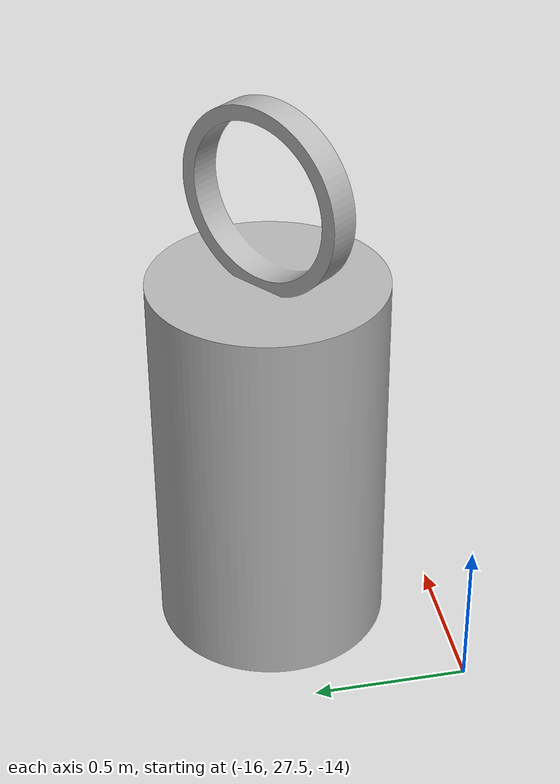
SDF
<sdf version="1.6">
  <model name="relic">
    <link name="link">
    <visual name='visual'>
      <geometry>
        <mesh>
          <uri>model://relic/meshes/relic.stl</uri>
	  <scale>0.01 0.01 0.01</scale>
        </mesh>
      </geometry>
    </visual>

    <collision name='collision'>
      <geometry>
        <mesh>
          <uri>model://relic/meshes/relic.stl</uri>
	        <scale>0.01 0.01 0.01</scale>
        </mesh>
      </geometry>
    </collision>

    </link>
  </model>
</sdf>
